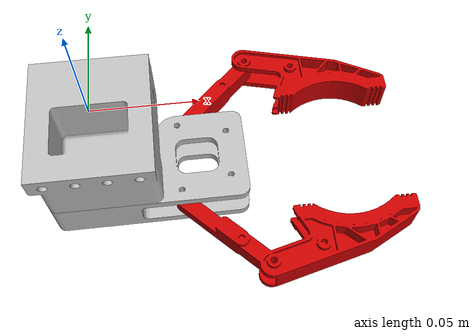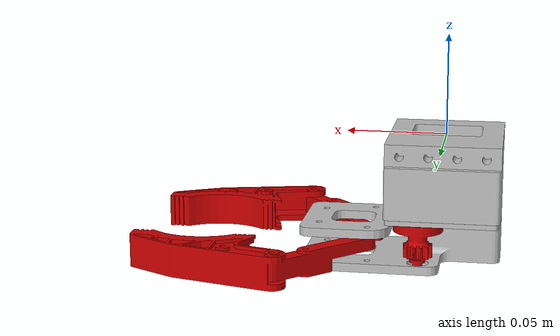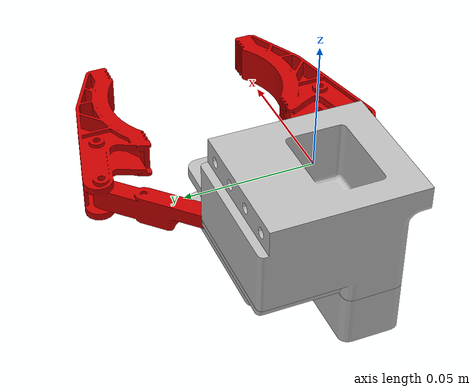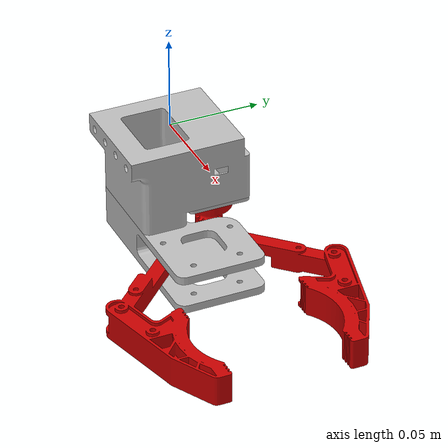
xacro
<?xml version="1.0" encoding="utf-8"?>
<robot xmlns:xacro="http://www.ros.org/wiki/xacro" name="gripper_v3">

<xacro:include filename="$(find gripper_v3)/urdf/gripper_v3_transmision.xacro" />
<xacro:include filename="$(find gripper_v3)/urdf/gripper_v3_gazebo.xacro" />

  <link name="base_link">
    <inertial>
      <origin xyz="-0.000233932670539957 -0.00290226342934575 -0.0209864529757334" rpy="0 0 0" />
      <mass value="0.0860486271706072" />
      <inertia ixx="4.60270856070871E-05" ixy="5.33345466078872E-07" ixz="1.61610456827888E-08" iyy="4.42358536381739E-05" iyz="-3.89906446444853E-06" izz="5.96488212968535E-05" />
    </inertial>
    <visual>
      <origin xyz="0 0 0" rpy="0.0 0.0 0.0" />
      <geometry>
        <mesh filename="package://gripper_v3/meshes/base_link.STL" />
      </geometry>
      <material name="">
        <color rgba="0.745098039215686 0.745098039215686 0.745098039215686 1" />
      </material>
    </visual>
    <collision>
      <origin xyz="0 0 0" rpy="0 0 0" />
      <geometry>
        <mesh filename="package://gripper_v3/meshes/base_link.STL" />
      </geometry>
    </collision>
  </link>

  <joint name="base_cover_joint" type="fixed">
    <origin xyz="-0.000345710724147255 0.0163150116974555 -0.0395" rpy="0 0 0" />
    <parent link="base_link" />
    <child link="base_cover" />
    <axis xyz="0 0 0" />
  </joint>

  <link name="base_cover">
    <inertial>
      <origin xyz="0.00097934794351009 -1.1557777039672E-18 0.00118306456131385" rpy="0 0 0" />
      <mass value="0.00379367551893743" />
      <inertia ixx="4.13363177386539E-07" ixy="-7.34969536127035E-23" ixz="-2.09449409511163E-09" iyy="1.01783223473537E-06" iyz="-3.6965123010999E-25" izz="1.42719758204509E-06" />
    </inertial>
    <visual>
      <origin xyz="0 0 0" rpy="0 0 0" />
      <geometry>
        <mesh filename="package://gripper_v3/meshes/base_cover.STL" />
      </geometry>
      <material name="">
        <color rgba="0.745098039215686 0.745098039215686 0.745098039215686 1" />
      </material>
    </visual>
    <collision>
      <origin xyz="0 0 0" rpy="0 0 0" />
      <geometry>
        <mesh filename="package://gripper_v3/meshes/base_cover.STL" />
      </geometry>
    </collision>
  </link>

  <joint name="gear_joint" type="fixed">
    <origin xyz="0.012597246148251 0 -0.02795" rpy="3.14159265358979 0 3.14159265358979" />
    <parent link="base_cover" />
    <child link="gear" />
    <axis xyz="0 0 0" />
  </joint>

  <link name="gear">
    <inertial>
      <origin xyz="1.48719050871091E-06 -1.63442044206748E-06 -0.0174626631819118" rpy="0 0 0" />
      <mass value="0.0029572486230655" />
      <inertia ixx="2.06097244598777E-07" ixy="-6.73342692475733E-13" ixz="-1.56110015737058E-12" iyy="2.0609248744706E-07" iyz="-2.48416054683388E-12" izz="1.59997164132047E-07" />
    </inertial>
    <visual>
      <origin xyz="0 0 0" rpy="0 0 0" />
      <geometry>
        <mesh filename="package://gripper_v3/meshes/gear.STL" />
      </geometry>
      <material name="">
        <color rgba="0.8 0 0 1" />
      </material>
    </visual>
    <collision>
      <origin xyz="0 0 0" rpy="0 0 0" />
      <geometry>
        <mesh filename="package://gripper_v3/meshes/gear.STL" />
      </geometry>
    </collision>
  </link>

  <link
    name="gripper_case">
    <inertial>
      <origin
        xyz="0.0101631127526922 -0.000874217173177295 0.0112240453195015"
        rpy="0 0 0" />
      <mass
        value="0.0418508994739882" />
      <inertia
        ixx="1.00570098519439E-05"
        ixy="6.07774954541504E-06"
        ixz="2.43903118826728E-07"
        iyy="3.72909675922631E-05"
        iyz="-4.86061773221263E-07"
        izz="4.2398664379189E-05" />
    </inertial>
    <visual>
      <origin
        xyz="0 0 0"
        rpy="0 0 0" />
      <geometry>
        <mesh
          filename="package://gripper_v3/meshes/gripper_case.STL" />
      </geometry>
      <material
        name="">
        <color
          rgba="0.745098039215686 0.745098039215686 0.745098039215686 1" />
      </material>
    </visual>
    <collision>
      <origin
        xyz="0 0 0"
        rpy="0 0 0" />
      <geometry>
        <mesh
          filename="package://gripper_v3/meshes/gripper_case.STL" />
      </geometry>
    </collision>
  </link>
  <joint
    name="gripper_case_joint"
    type="fixed">
    <origin
      xyz="0.028418 -0.007505 -0.0455"
      rpy="3.1416 0 3.1416" />
    <parent
      link="base_link" />
    <child
      link="gripper_case" />
    <axis
      xyz="0 0 0" />
    <dynamics friction="1.0"/>
  </joint>
  <link
    name="finger_R">
    <inertial>
      <origin
        xyz="0.0646410151274838 -0.00298003356390997 -0.0260492558497054"
        rpy="0 0 0" />
      <mass
        value="0.016416959143224" />
      <inertia
        ixx="1.86017739488292E-06"
        ixy="2.30960752109193E-07"
        ixz="7.59965115700977E-07"
        iyy="1.70037513595875E-05"
        iyz="-8.84757793955789E-08"
        izz="1.58929298094101E-05" />
    </inertial>
    <visual>
      <origin
        xyz="0 0 0"
        rpy="0 0 0" />
      <geometry>
        <mesh
          filename="package://gripper_v3/meshes/finger_R.STL" />
      </geometry>
      <material
        name="">
        <color
          rgba="0.8 0 0 1" />
      </material>
    </visual>
    <collision>
      <origin
        xyz="0 0 0"
        rpy="0 0 0" />
      <geometry>
        <mesh
          filename="package://gripper_v3/meshes/finger_R.STL" />
      </geometry>
    </collision>
  </link>
  <joint
    name="finger_R_joint"
    type="prismatic">
    <origin
      xyz="-0.009184 -0.013558 0.01425"
      rpy="1.5708 0 3.1416" />
    <parent
      link="gripper_case" />
    <child
      link="finger_R" />
    <axis
      xyz="0 0 1" />
    <!--dynamics friction="0.3"/!-->
    <limit
      lower="0"
      upper="0.0325"
      effort="9999"
      velocity="0.5" />
  </joint>

  <link
    name="finger_L">
    <inertial>
      <origin
        xyz="-0.0646410151274838 0.00298003356390986 -0.0260492558497054"
        rpy="0 0 0" />
      <mass
        value="0.016416959143224" />
      <inertia
        ixx="1.86017739488292E-06"
        ixy="2.30960752109188E-07"
        ixz="-7.59965115700987E-07"
        iyy="1.70037513595875E-05"
        iyz="8.84757793955747E-08"
        izz="1.58929298094101E-05" />
    </inertial>
    <visual>
      <origin
        xyz="0 0 0"
        rpy="0 0 0" />
      <geometry>
        <mesh
          filename="package://gripper_v3/meshes/finger_L.STL" />
      </geometry>
      <material
        name="">
        <color
          rgba="0.8 0 0 1" />
      </material>
    </visual>
    <collision>
      <origin
        xyz="0 0 0"
        rpy="0 0 0" />
      <geometry>
        <mesh
          filename="package://gripper_v3/meshes/finger_L.STL" />
      </geometry>
    </collision>
  </link>
  <joint
    name="finger_L_joint"
    type="prismatic">
    <origin
      xyz="-0.009184 0.024542 0.00775"
      rpy="1.5708 0 0" />
    <parent
      link="gripper_case" />
    <child
      link="finger_L" />
    <axis
      xyz="0 0 1" />
    <!--dynamics friction="0.3"/!-->
    <limit
      lower="0"
      upper="0.0325"
      effort="9999"
      velocity="0.5" />
    <mimic joint="finger_R_joint" multiplier="1.0" offset="0.0" />
  </joint>

</robot>
